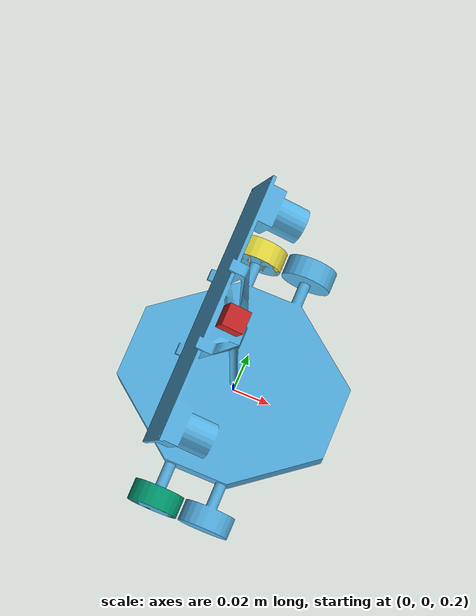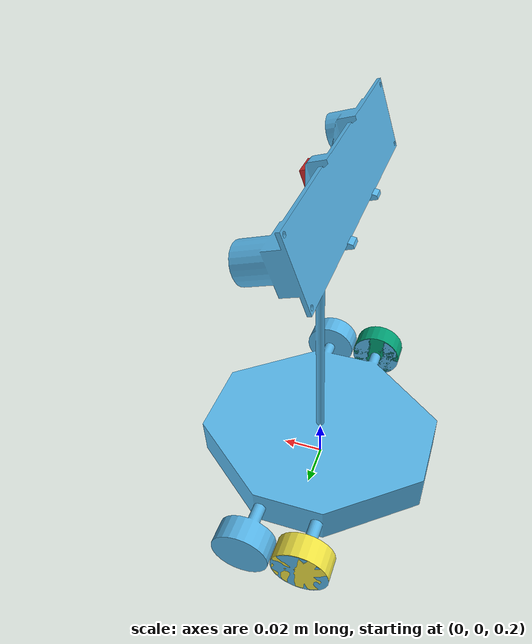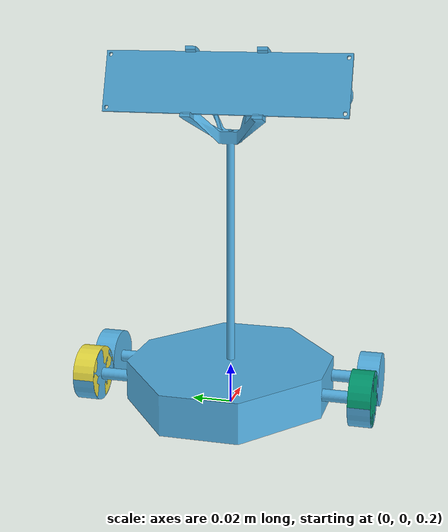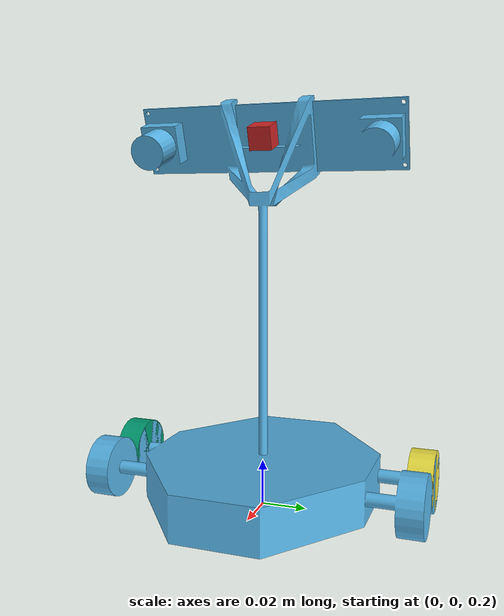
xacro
<?xml version="1.0"?>
<robot name="fourth_robot" xmlns:xacro="http://ros.org/wiki/xacro">

  <xacro:include filename="$(find fourth_robot_description)/urdf/base/base.urdf.xacro"/>
  <xacro:include filename="$(find fourth_robot_description)/urdf/wheel/wheel.urdf.xacro"/>
  <xacro:include filename="$(find fourth_robot_description)/urdf/wheel/follow_wheel.urdf.xacro"/>
  <xacro:include filename="$(find fourth_robot_description)/urdf/sensors/stereo_camera/stereo_camera.urdf.xacro"/>
  <!-- =============== Link & Joint =============== -->
  <!-- Base -->
  <link name="base_footprint"/>
  <xacro:base_v0 parent="base_footprint">
	<origin xyz="0 0 0.20316"/>
  </xacro:base_v0>

  <!-- Wheel -->
  <!-- Right Wheel -->
  <xacro:wheel_v0 prefix="right" parent="base_link">
        <origin xyz="-0.014 -0.0695 0.0115" rpy="0 0 0"/>
        <axis xyz="0 1 0"/>
  </xacro:wheel_v0>
  <!-- Left Wheel -->
  <xacro:wheel_v0 prefix="left" parent="base_link">
        <origin xyz="-0.014 0.0695 0.0115" rpy="0 0 ${M_PI}"/>
        <axis xyz="0 -1 0"/>
  </xacro:wheel_v0>

  <!-- Front Wheel -->
  <xacro:follow_wheel_v0 prefix="front" parent="base_link">
        <origin xyz="0.05 0 0.0115" rpy="0 0 ${M_PI}"/>
        <axis xyz="0 -1 0"/>
  </xacro:follow_wheel_v0>

  <!-- Sensors -->
  <!-- GPS -->

  <!-- Gim30 -->

  <!-- Front LRF -->

  <!-- Rear LRF -->

  <!--stereo camera-->
  <xacro:stereo_camera prefix="upper" parent="base_link">
    <origin xyz="0 0 0.16" rpy="0 0.31 0"/>
  </xacro:stereo_camera>

  <link name="imu_link"/>
  <joint name="imu_link_joint" type="fixed">
	<parent link="base_link"/>
	<child link="imu_link"/>
	<origin xyz="0 0 0.051" rpy="0 0 0" />
  </joint>

  <!-- ===============  Transmission =============== -->
  <xacro:wheel_trans_v0 prefix="right"/>
  <xacro:wheel_trans_v0 prefix="left"/>

  <!-- =============== Gazebo =============== -->
  <gazebo>
    <plugin name="gazebo_ros_control" filename="libgazebo_ros_control.so">
    </plugin>
  </gazebo>

  <!-- Base -->
  <xacro:base_gazebo_v0/>

  <!-- Wheel -->
  <xacro:wheel_gazebo_v0 prefix="right"/>
  <xacro:wheel_gazebo_v0 prefix="left"/>
  <xacro:follow_wheel_gazebo_v0 prefix="front"/>

  <!-- LRF -->

  <!--Stereo Camera-->
  <xacro:stereo_camera_gazebo prefix="upper"/>
</robot>

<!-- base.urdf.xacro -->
<robot xmlns:xacro="http://ros.org/wiki/xacro">

  <xacro:include filename="$(find fourth_robot_description)/urdf/base/base.gazebo.xacro"/>

  <xacro:macro name="base_v0" params="parent *joint_origin">
	<joint name="base_link_joint" type="fixed">
	  <xacro:insert_block name="joint_origin"/>
	  <parent link="${parent}"/>
	  <child link="base_link"/>
	</joint>

	<link name="base_link">
	  <visual>
                <origin xyz="0 0 0" rpy="0 0 0" />
		<geometry>
                  <mesh filename="package://fourth_robot_description/meshes/STL/base/Architect_assem_appearance.stl"/>
		</geometry>
	  </visual>
	  <collision>
		<geometry>
                  <mesh filename="package://fourth_robot_description/meshes/STL/base/Architect_assem_collision.stl"/>
		</geometry>
	  </collision>
	  <inertial>
                <origin xyz="0 0 0"/>
                <mass value="2.4"/>
                <inertia ixx="0.0008255" ixy="0" ixz="0.00001601"
                                 iyy="0.0007067" iyz="-0.0000000009905"
                                 izz="0.0004498" />
	  </inertial>
	</link>
  </xacro:macro>

</robot>

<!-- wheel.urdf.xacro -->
<robot xmlns:xacro="http://ros.org/wiki/xacro">

  <xacro:include filename="$(find fourth_robot_description)/urdf/common.xacro"/>
  <xacro:include filename="$(find fourth_robot_description)/urdf/wheel/wheel.transmission.xacro"/>
  <xacro:include filename="$(find fourth_robot_description)/urdf/wheel/wheel.gazebo.xacro"/>

  <xacro:property name="wheel_radius" value="0.0135"/>
  <xacro:property name="wheel_length" value="0.011"/>
  <xacro:property name="wheel_mass" value="0.66"/>

  <xacro:macro name="wheel_v0" params="prefix parent *joint_origin *joint_axis">
	<joint name="${prefix}_wheel_joint" type="continuous">
	  <xacro:insert_block name="joint_origin"/>
	  <parent link="${parent}"/>
	  <child link="${prefix}_wheel_link"/>
	  <xacro:insert_block name="joint_axis"/>
	</joint>

	<link name="${prefix}_wheel_link">
          <visual>
          <origin xyz="0 0 0" rpy="${-M_PI/2} 0 0"/>
		<geometry>
                  <cylinder radius="${wheel_radius}" length="${wheel_length}"/>
		</geometry>
	  </visual>
	  <collision>
                <origin xyz="0 0 0" rpy="${-M_PI/2} 0 0"/>
		<geometry>
		  <cylinder radius="${wheel_radius}" length="${wheel_length}"/>
		</geometry>
	  </collision>
	  <inertial>
		<origin xyz="0 -0.003 0" rpy="${-M_PI/2} 0 0"/>
		<cylinder_inertial mass="${wheel_mass}"
						   radius="${wheel_radius}" length="${wheel_length}"/>
	  </inertial>
	</link>
  </xacro:macro>

</robot>

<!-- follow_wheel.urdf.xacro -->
<robot xmlns:xacro="http://ros.org/wiki/xacro">

  <xacro:include filename="$(find fourth_robot_description)/urdf/common.xacro"/>
  <xacro:include filename="$(find fourth_robot_description)/urdf/wheel/wheel.transmission.xacro"/>
  <xacro:include filename="$(find fourth_robot_description)/urdf/wheel/follow_wheel.gazebo.xacro"/>

  <xacro:property name="follow_wheel_radius" value="0.0135"/>
  <xacro:property name="follow_wheel_length" value="0.011"/>
  <xacro:property name="follow_wheel_mass" value="0.66"/>

  <xacro:macro name="follow_wheel_v0" params="prefix parent *joint_origin *joint_axis">
	<joint name="${prefix}_follow_wheel_joint" type="continuous">
	  <xacro:insert_block name="joint_origin"/>
	  <parent link="${parent}"/>
	  <child link="${prefix}_follow_wheel_link"/>
	  <xacro:insert_block name="joint_axis"/>
	</joint>

	<link name="${prefix}_follow_wheel_link">
	  <collision>
                <origin xyz="0 0 0" rpy="${-M_PI/2} 0 0"/>
		<geometry>
		  <cylinder radius="${follow_wheel_radius}" length="${follow_wheel_length}"/>
		</geometry>
	  </collision>
	  <inertial>
		<origin xyz="0 -0.003 0" rpy="${-M_PI/2} 0 0"/>
		<cylinder_inertial mass="${follow_wheel_mass}"
						   radius="${follow_wheel_radius}" length="${follow_wheel_length}"/>
	  </inertial>
	</link>
  </xacro:macro>

</robot>

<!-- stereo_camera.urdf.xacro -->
<robot xmlns:xacro="http://ros.org/wiki/xacro">

  <xacro:include filename="$(find fourth_robot_description)/urdf/sensors/stereo_camera/stereo_camera.gazebo.xacro"/>

  <xacro:macro name="stereo_camera" params="prefix parent *joint_origin">
        <joint name="${prefix}_stereo_camera_joint" type="fixed">
          <xacro:insert_block name="joint_origin"/>
          <parent link="${parent}"/>
          <child link="${prefix}_stereo_camera_link"/>
        </joint>

        <link name="${prefix}_stereo_camera_link">
          <collision>
            <origin xyz="0 0 0" rpy="0 0 0"/>
            <geometry>
              <box size="0.01 0.01 0.01"/>
            </geometry>
          </collision>

          <visual>
            <origin xyz="0 0 0" rpy="0 0 0"/>
            <geometry>
              <box size="0.01 0.01 0.01"/>
            </geometry>
            <material name="red"/>
          </visual>

          <inertial>
            <mass value="1e-5" />
            <origin xyz="0 0 0" rpy="0 0 0"/>
            <inertia ixx="1e-6" ixy="0" ixz="0" iyy="1e-6" iyz="0" izz="1e-6" />
          </inertial>
        </link>
  </xacro:macro>

</robot>
